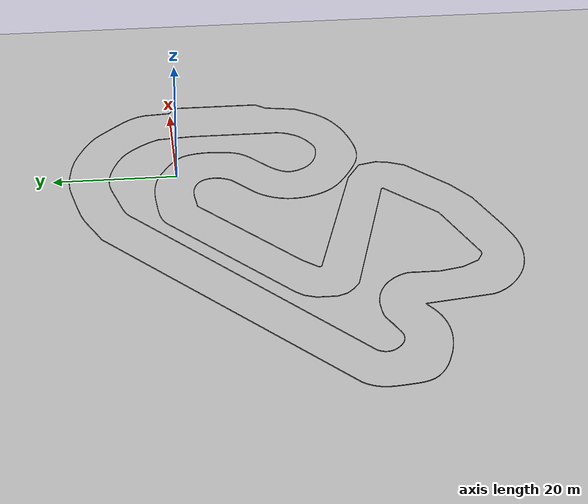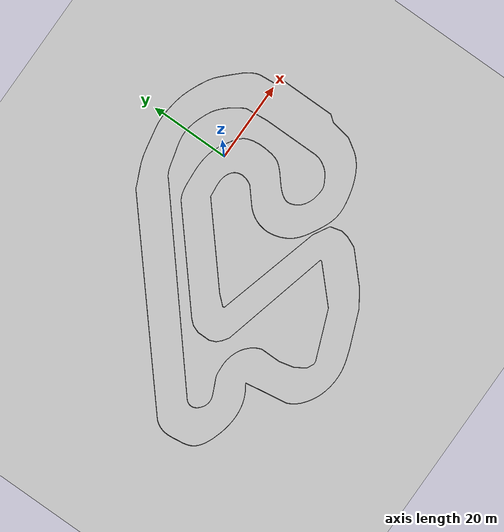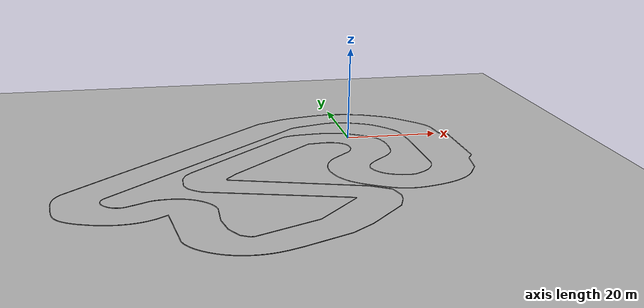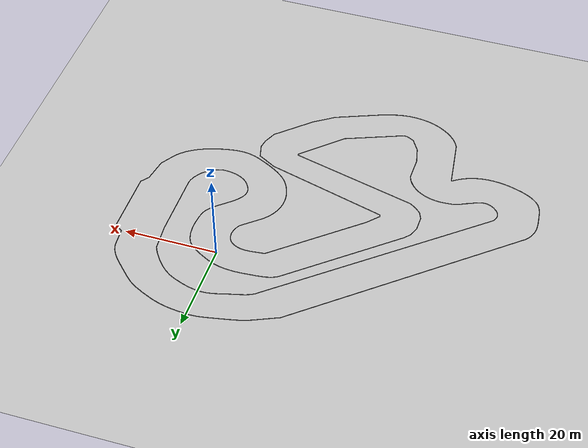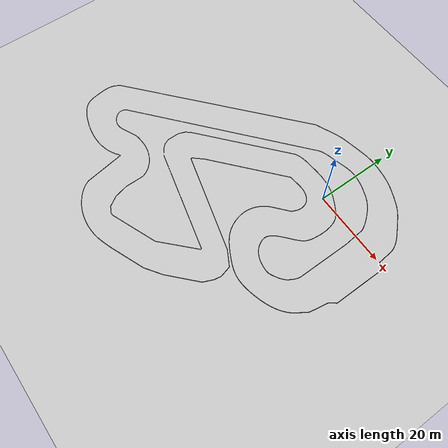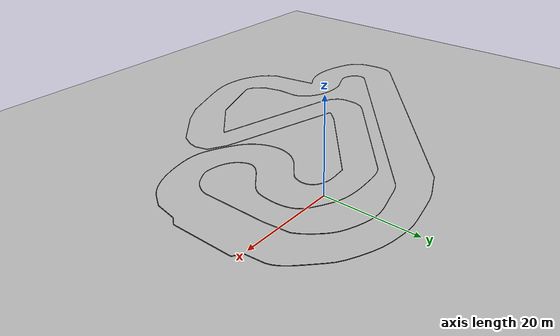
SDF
<?xml version="1.0" ?>
<sdf version="1.6">
  <world name="default">
    <scene>
      <sky>
        <clouds>
          <speed>12</speed>
        </clouds>
      </sky>
      <ambient>1.0 1.0 1.0 1.0</ambient>
      <shadows>true</shadows>
    </scene>

    <!-- A global light source -->
    <include>
      <uri>model://urdf/models/sun</uri>
    </include>
    <!-- A ground plane -->
    <include>
      <name>blended_plane</name>
      <uri>model://urdf/models/blended_track_ccrf_mod</uri>
      <pose>-22.5 -18.5 0 0 0 0</pose>
    </include>
    <include>
      <name>blended_track</name>
      <uri>model://urdf/models/track_ccrf_mod</uri>
      <pose>-67.4 26.425 0.2 3.141592 0 0</pose>
    </include>
  </world>
</sdf>

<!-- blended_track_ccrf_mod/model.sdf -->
<sdf version="1.5">
  <model name="NAME">
    <static>true</static>
    <link name="link">
      <collision name="collision">
        <geometry>
          <plane>
            <normal>0 0 1</normal>
            <size>90 90</size>
          </plane>
        </geometry>
        <surface>
          <friction>
            <ode>
              <mu>100</mu>
              <mu2>50</mu2>
            </ode>
          </friction>
        </surface>
      </collision>
      <visual name="visual">
        <cast_shadows>false</cast_shadows>
        <geometry>
          <plane>
            <normal>0 0 1</normal>
            <size>90 90</size> <!-- the size of your texture -->
          </plane>
        </geometry>
        <material>
          <script>
            <uri>model://urdf/gazebo.material</uri>
            <name>Gazebo/Texture_blend_mod_ccrf</name>
          </script>
        </material>
      </visual>
    </link>
  </model>
</sdf>

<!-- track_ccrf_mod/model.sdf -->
<sdf version="1.5">
  <model name="track">
    <static>true</static>
    <pose> -64 39 -12 3.14159 0 0</pose>
    <link name="link">
      <visual name="visual">
        <cast_shadows>false</cast_shadows>
        <geometry>
          <mesh>
            <uri>model://urdf/cad/RSS_CCRF_2020Mapv2.1.dae</uri>
            <scale>0.001 0.00075 0.0009</scale>
          </mesh>
        </geometry>
        <material>
          <script>
            <uri>model://urdf/gazebo.material</uri>
            <name>Gazebo/Black</name>
          </script>
        </material>
      </visual>
    </link>
  </model>
</sdf>
